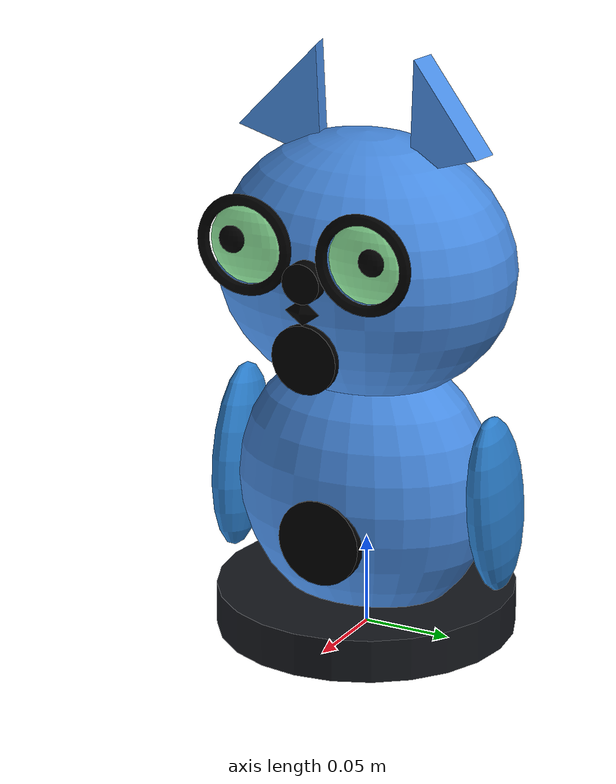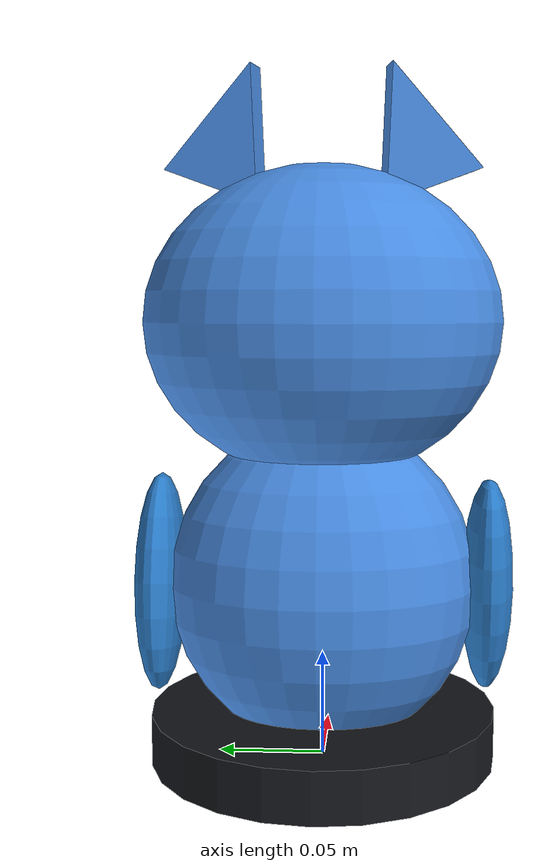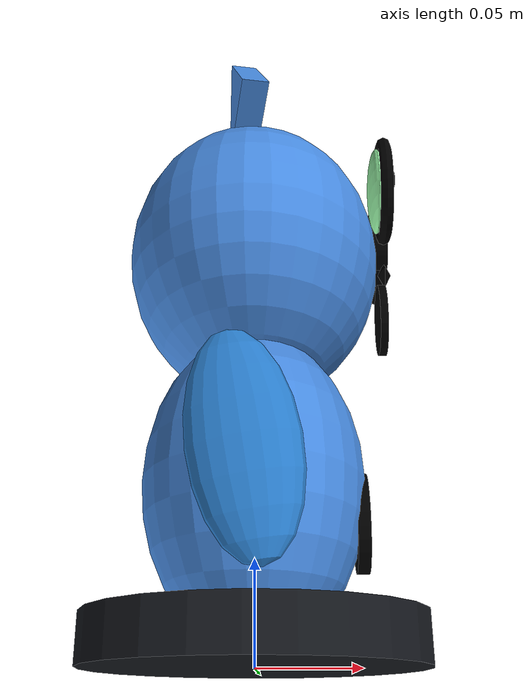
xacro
<?xml version="1.0"?>
<robot name="sloppy_tron_v0" xmlns:xacro="http://www.ros.org/wiki/xacro">
  <!--
    SloppyTron v0: Reachy-inspired companion kinematics with Sloppy mascot visual DNA.
    Mascot reference: ~/dev/slop/logo/sloppy.svg
  -->

  <material name="slop_blue"><color rgba="0.290 0.561 0.906 1.0" /></material>
  <material name="slop_dark_blue"><color rgba="0.169 0.502 0.812 1.0" /></material>
  <material name="slop_eye_green"><color rgba="0.596 0.961 0.651 1.0" /></material>
  <material name="feature_black"><color rgba="0.0 0.0 0.0 1.0" /></material>
  <material name="base_graphite"><color rgba="0.08 0.09 0.11 1.0" /></material>

  <link name="base_link">
    <visual>
      <origin xyz="0 0 0.012" rpy="0 0 0" />
      <geometry><cylinder radius="0.082" length="0.024" /></geometry>
      <material name="base_graphite" />
    </visual>
    <collision>
      <origin xyz="0 0 0.012" rpy="0 0 0" />
      <geometry><cylinder radius="0.085" length="0.026" /></geometry>
    </collision>
  </link>

  <joint name="body_yaw_joint" type="continuous">
    <parent link="base_link" />
    <child link="torso_link" />
    <origin xyz="0 0 0.026" rpy="0 0 0" />
    <axis xyz="0 0 1" />
  </joint>

  <link name="torso_link">
    <visual>
      <origin xyz="0 0 0.058" rpy="0 0 0" />
      <geometry><mesh filename="package://sloppy_tron_description/meshes/visual/body_pod.stl" /></geometry>
      <material name="slop_blue" />
    </visual>
    <collision>
      <origin xyz="0 0 0.058" rpy="0 0 0" />
      <geometry><sphere radius="0.074" /></geometry>
    </collision>
  </link>

  <joint name="speaker_joint" type="fixed">
    <parent link="torso_link" />
    <child link="speaker_link" />
    <origin xyz="0.052 0 0.040" rpy="0 1.5708 0" />
  </joint>
  <link name="speaker_link">
    <visual>
      <geometry><cylinder radius="0.024" length="0.006" /></geometry>
      <material name="feature_black" />
    </visual>
  </link>

  <joint name="left_side_fin_joint" type="fixed">
    <parent link="torso_link" />
    <child link="left_side_fin_link" />
    <origin xyz="0 0.078 0.058" rpy="0 0.15 0" />
  </joint>
  <link name="left_side_fin_link">
    <visual>
      <geometry><mesh filename="package://sloppy_tron_description/meshes/visual/side_fin.stl" /></geometry>
      <material name="slop_dark_blue" />
    </visual>
  </link>

  <joint name="right_side_fin_joint" type="fixed">
    <parent link="torso_link" />
    <child link="right_side_fin_link" />
    <origin xyz="0 -0.078 0.058" rpy="0 -0.15 0" />
  </joint>
  <link name="right_side_fin_link">
    <visual>
      <geometry><mesh filename="package://sloppy_tron_description/meshes/visual/side_fin.stl" /></geometry>
      <material name="slop_dark_blue" />
    </visual>
  </link>

  <joint name="neck_mount_joint" type="fixed">
    <parent link="torso_link" />
    <child link="neck_link" />
    <origin xyz="0 0 0.128" rpy="0 0 0" />
  </joint>
  <link name="neck_link">
    <visual>
      <origin xyz="0 0 0.012" rpy="0 0 0" />
      <geometry><cylinder radius="0.026" length="0.024" /></geometry>
      <material name="base_graphite" />
    </visual>
  </link>

  <joint name="head_pan_joint" type="revolute">
    <parent link="neck_link" />
    <child link="pan_link" />
    <origin xyz="0 0 0.024" rpy="0 0 0" />
    <axis xyz="0 0 1" />
    <limit lower="-1.0471975512" upper="1.0471975512" effort="1.0" velocity="1.0" />
  </joint>
  <link name="pan_link" />

  <joint name="head_tilt_joint" type="revolute">
    <parent link="pan_link" />
    <child link="head_link" />
    <origin xyz="0 0 0.030" rpy="0 0 0" />
    <axis xyz="0 1 0" />
    <limit lower="-0.6108652382" upper="0.6108652382" effort="1.0" velocity="1.0" />
  </joint>

  <link name="head_link">
    <visual>
      <geometry><mesh filename="package://sloppy_tron_description/meshes/visual/head_shell.stl" /></geometry>
      <material name="slop_blue" />
    </visual>
    <collision>
      <geometry><sphere radius="0.084" /></geometry>
    </collision>
  </link>

  <joint name="camera_joint" type="fixed">
    <parent link="head_link" />
    <child link="camera_link" />
    <origin xyz="0.069 0 0.010" rpy="0 1.5708 0" />
  </joint>
  <link name="camera_link">
    <visual>
      <geometry><cylinder radius="0.011" length="0.008" /></geometry>
      <material name="feature_black" />
    </visual>
  </link>

  <joint name="mic_array_joint" type="fixed">
    <parent link="head_link" />
    <child link="mic_array_link" />
    <origin xyz="0.068 0 -0.033" rpy="0 1.5708 0" />
  </joint>
  <link name="mic_array_link">
    <visual>
      <geometry><cylinder radius="0.019" length="0.004" /></geometry>
      <material name="feature_black" />
    </visual>
  </link>

  <joint name="left_eye_joint" type="fixed">
    <parent link="head_link" />
    <child link="left_eye_link" />
    <origin xyz="0.066 0.035 0.025" rpy="0 0 0" />
  </joint>
  <link name="left_eye_link">
    <visual>
      <geometry><mesh filename="package://sloppy_tron_description/meshes/visual/eye_lens.stl" /></geometry>
      <material name="slop_eye_green" />
    </visual>
    <visual>
      <origin xyz="0.0035 0 0" rpy="0 0 0" />
      <geometry><mesh filename="package://sloppy_tron_description/meshes/visual/eye_ring.stl" /></geometry>
      <material name="feature_black" />
    </visual>
    <visual>
      <origin xyz="0.006 0.006 0.003" rpy="0 0 0" />
      <geometry><mesh filename="package://sloppy_tron_description/meshes/visual/pupil.stl" /></geometry>
      <material name="feature_black" />
    </visual>
  </link>

  <joint name="right_eye_joint" type="fixed">
    <parent link="head_link" />
    <child link="right_eye_link" />
    <origin xyz="0.066 -0.035 0.025" rpy="0 0 0" />
  </joint>
  <link name="right_eye_link">
    <visual>
      <geometry><mesh filename="package://sloppy_tron_description/meshes/visual/eye_lens.stl" /></geometry>
      <material name="slop_eye_green" />
    </visual>
    <visual>
      <origin xyz="0.0035 0 0" rpy="0 0 0" />
      <geometry><mesh filename="package://sloppy_tron_description/meshes/visual/eye_ring.stl" /></geometry>
      <material name="feature_black" />
    </visual>
    <visual>
      <origin xyz="0.006 -0.006 0.003" rpy="0 0 0" />
      <geometry><mesh filename="package://sloppy_tron_description/meshes/visual/pupil.stl" /></geometry>
      <material name="feature_black" />
    </visual>
  </link>

  <joint name="nose_joint" type="fixed">
    <parent link="head_link" />
    <child link="nose_link" />
    <origin xyz="0.071 0 -0.006" rpy="0 0 0" />
  </joint>
  <link name="nose_link">
    <visual>
      <geometry><mesh filename="package://sloppy_tron_description/meshes/visual/nose_diamond.stl" /></geometry>
      <material name="feature_black" />
    </visual>
  </link>

  <joint name="antenna_left_joint" type="revolute">
    <parent link="head_link" />
    <child link="antenna_left_link" />
    <origin xyz="0.000 0.050 0.062" rpy="0.35 0.00 -0.22" />
    <axis xyz="1 0 0" />
    <limit lower="-1.5707963268" upper="1.5707963268" effort="0.2" velocity="1.0" />
  </joint>
  <link name="antenna_left_link">
    <visual>
      <geometry><mesh filename="package://sloppy_tron_description/meshes/visual/ear_fin.stl" /></geometry>
      <material name="slop_blue" />
    </visual>
  </link>

  <joint name="antenna_right_joint" type="revolute">
    <parent link="head_link" />
    <child link="antenna_right_link" />
    <origin xyz="0.000 -0.050 0.062" rpy="-0.35 0.00 0.22" />
    <axis xyz="1 0 0" />
    <limit lower="-1.5707963268" upper="1.5707963268" effort="0.2" velocity="1.0" />
  </joint>
  <link name="antenna_right_link">
    <visual>
      <geometry><mesh filename="package://sloppy_tron_description/meshes/visual/ear_fin.stl" /></geometry>
      <material name="slop_blue" />
    </visual>
  </link>
</robot>
